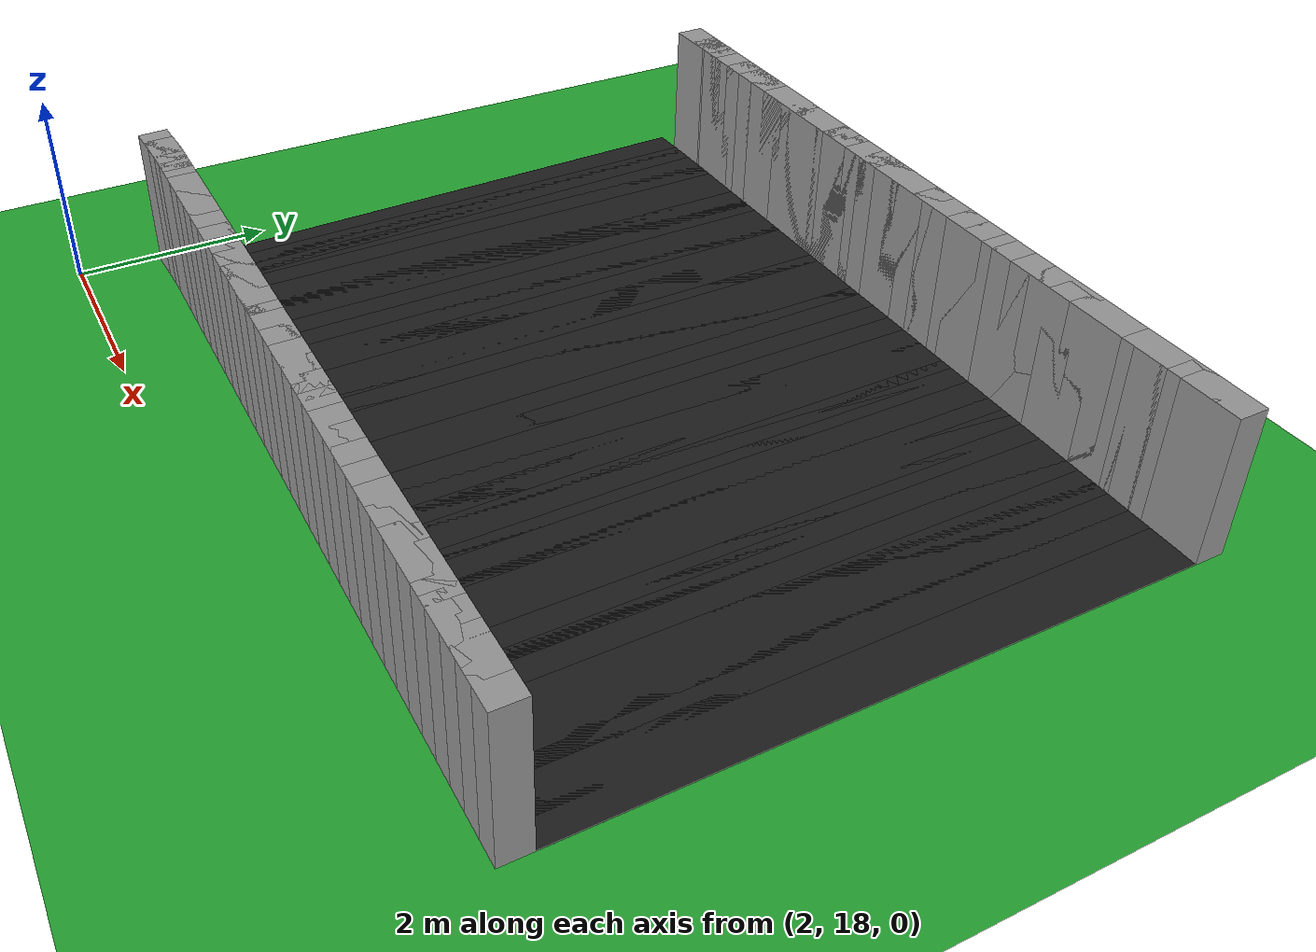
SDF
<sdf version="1.6">
 <world name="obstacle_asymturn">
  <include><uri>model://sun</uri></include>
  <model name="ground_plane">
   <static>true</static>
   <link name="link">
    <collision name="collision">
     <surface><friction><ode><mu>100</mu><mu2>50</mu2></ode></friction></surface>
     <geometry><plane><normal>0 0 1</normal><size>120 120</size></plane></geometry>
    </collision>
    <visual name="visual">
     <geometry><plane><normal>0 0 1</normal><size>120 120</size></plane></geometry>
     <material>
      <script><uri>file://media/materials/scripts/gazebo.material</uri><name>Gazebo/Green</name></script>
     </material>
    </visual>
   </link>
  </model>
  <model name="asphalt_302">
   <static>true</static>
   <pose>10.453 22.163 0.005 0 0 3.14159</pose>
   <link name="link">
    <visual name="visual">
     <geometry><box><size>0.610 6.000 0.010</size></box></geometry>
     <material>
      <script><uri>file://media/materials/scripts/gazebo.material</uri><name>Gazebo/Black</name></script>
     </material>
    </visual>
   </link>
  </model>
  <model name="curbL_302">
   <static>true</static>
   <pose>10.453 19.013 0.750 0 0 3.14159</pose>
   <link name="link">
    <collision name="collision"><geometry><box><size>0.610 0.300 1.500</size></box></geometry></collision>
    <visual name="visual">
     <geometry><box><size>0.610 0.300 1.500</size></box></geometry>
     <material>
      <script><uri>file://media/materials/scripts/gazebo.material</uri><name>Gazebo/Grey</name></script>
     </material>
    </visual>
   </link>
  </model>
  <model name="curbR_302">
   <static>true</static>
   <pose>10.453 25.313 0.750 0 0 3.14159</pose>
   <link name="link">
    <collision name="collision"><geometry><box><size>0.610 0.300 1.500</size></box></geometry></collision>
    <visual name="visual">
     <geometry><box><size>0.610 0.300 1.500</size></box></geometry>
     <material>
      <script><uri>file://media/materials/scripts/gazebo.material</uri><name>Gazebo/Grey</name></script>
     </material>
    </visual>
   </link>
  </model>
  <model name="asphalt_303">
   <static>true</static>
   <pose>10.203 22.163 0.005 0 0 3.14159</pose>
   <link name="link">
    <visual name="visual">
     <geometry><box><size>0.610 6.000 0.010</size></box></geometry>
     <material>
      <script><uri>file://media/materials/scripts/gazebo.material</uri><name>Gazebo/Black</name></script>
     </material>
    </visual>
   </link>
  </model>
  <model name="curbL_303">
   <static>true</static>
   <pose>10.203 19.013 0.750 0 0 3.14159</pose>
   <link name="link">
    <collision name="collision"><geometry><box><size>0.610 0.300 1.500</size></box></geometry></collision>
    <visual name="visual">
     <geometry><box><size>0.610 0.300 1.500</size></box></geometry>
     <material>
      <script><uri>file://media/materials/scripts/gazebo.material</uri><name>Gazebo/Grey</name></script>
     </material>
    </visual>
   </link>
  </model>
  <model name="curbR_303">
   <static>true</static>
   <pose>10.203 25.313 0.750 0 0 3.14159</pose>
   <link name="link">
    <collision name="collision"><geometry><box><size>0.610 0.300 1.500</size></box></geometry></collision>
    <visual name="visual">
     <geometry><box><size>0.610 0.300 1.500</size></box></geometry>
     <material>
      <script><uri>file://media/materials/scripts/gazebo.material</uri><name>Gazebo/Grey</name></script>
     </material>
    </visual>
   </link>
  </model>
  <model name="asphalt_304">
   <static>true</static>
   <pose>9.953 22.163 0.005 0 0 3.14159</pose>
   <link name="link">
    <visual name="visual">
     <geometry><box><size>0.610 6.000 0.010</size></box></geometry>
     <material>
      <script><uri>file://media/materials/scripts/gazebo.material</uri><name>Gazebo/Black</name></script>
     </material>
    </visual>
   </link>
  </model>
  <model name="curbL_304">
   <static>true</static>
   <pose>9.953 19.013 0.750 0 0 3.14159</pose>
   <link name="link">
    <collision name="collision"><geometry><box><size>0.610 0.300 1.500</size></box></geometry></collision>
    <visual name="visual">
     <geometry><box><size>0.610 0.300 1.500</size></box></geometry>
     <material>
      <script><uri>file://media/materials/scripts/gazebo.material</uri><name>Gazebo/Grey</name></script>
     </material>
    </visual>
   </link>
  </model>
  <model name="curbR_304">
   <static>true</static>
   <pose>9.953 25.313 0.750 0 0 3.14159</pose>
   <link name="link">
    <collision name="collision"><geometry><box><size>0.610 0.300 1.500</size></box></geometry></collision>
    <visual name="visual">
     <geometry><box><size>0.610 0.300 1.500</size></box></geometry>
     <material>
      <script><uri>file://media/materials/scripts/gazebo.material</uri><name>Gazebo/Grey</name></script>
     </material>
    </visual>
   </link>
  </model>
  <model name="asphalt_305">
   <static>true</static>
   <pose>9.703 22.163 0.005 0 0 3.14159</pose>
   <link name="link">
    <visual name="visual">
     <geometry><box><size>0.610 6.000 0.010</size></box></geometry>
     <material>
      <script><uri>file://media/materials/scripts/gazebo.material</uri><name>Gazebo/Black</name></script>
     </material>
    </visual>
   </link>
  </model>
  <model name="curbL_305">
   <static>true</static>
   <pose>9.703 19.013 0.750 0 0 3.14159</pose>
   <link name="link">
    <collision name="collision"><geometry><box><size>0.610 0.300 1.500</size></box></geometry></collision>
    <visual name="visual">
     <geometry><box><size>0.610 0.300 1.500</size></box></geometry>
     <material>
      <script><uri>file://media/materials/scripts/gazebo.material</uri><name>Gazebo/Grey</name></script>
     </material>
    </visual>
   </link>
  </model>
  <model name="curbR_305">
   <static>true</static>
   <pose>9.703 25.313 0.750 0 0 3.14159</pose>
   <link name="link">
    <collision name="collision"><geometry><box><size>0.610 0.300 1.500</size></box></geometry></collision>
    <visual name="visual">
     <geometry><box><size>0.610 0.300 1.500</size></box></geometry>
     <material>
      <script><uri>file://media/materials/scripts/gazebo.material</uri><name>Gazebo/Grey</name></script>
     </material>
    </visual>
   </link>
  </model>
  <model name="asphalt_306">
   <static>true</static>
   <pose>9.453 22.163 0.005 0 0 3.14159</pose>
   <link name="link">
    <visual name="visual">
     <geometry><box><size>0.610 6.000 0.010</size></box></geometry>
     <material>
      <script><uri>file://media/materials/scripts/gazebo.material</uri><name>Gazebo/Black</name></script>
     </material>
    </visual>
   </link>
  </model>
  <model name="curbL_306">
   <static>true</static>
   <pose>9.453 19.013 0.750 0 0 3.14159</pose>
   <link name="link">
    <collision name="collision"><geometry><box><size>0.610 0.300 1.500</size></box></geometry></collision>
    <visual name="visual">
     <geometry><box><size>0.610 0.300 1.500</size></box></geometry>
     <material>
      <script><uri>file://media/materials/scripts/gazebo.material</uri><name>Gazebo/Grey</name></script>
     </material>
    </visual>
   </link>
  </model>
  <model name="curbR_306">
   <static>true</static>
   <pose>9.453 25.313 0.750 0 0 3.14159</pose>
   <link name="link">
    <collision name="collision"><geometry><box><size>0.610 0.300 1.500</size></box></geometry></collision>
    <visual name="visual">
     <geometry><box><size>0.610 0.300 1.500</size></box></geometry>
     <material>
      <script><uri>file://media/materials/scripts/gazebo.material</uri><name>Gazebo/Grey</name></script>
     </material>
    </visual>
   </link>
  </model>
  <model name="asphalt_307">
   <static>true</static>
   <pose>9.203 22.163 0.005 0 0 3.14159</pose>
   <link name="link">
    <visual name="visual">
     <geometry><box><size>0.610 6.000 0.010</size></box></geometry>
     <material>
      <script><uri>file://media/materials/scripts/gazebo.material</uri><name>Gazebo/Black</name></script>
     </material>
    </visual>
   </link>
  </model>
  <model name="curbL_307">
   <static>true</static>
   <pose>9.203 19.013 0.750 0 0 3.14159</pose>
   <link name="link">
    <collision name="collision"><geometry><box><size>0.610 0.300 1.500</size></box></geometry></collision>
    <visual name="visual">
     <geometry><box><size>0.610 0.300 1.500</size></box></geometry>
     <material>
      <script><uri>file://media/materials/scripts/gazebo.material</uri><name>Gazebo/Grey</name></script>
     </material>
    </visual>
   </link>
  </model>
  <model name="curbR_307">
   <static>true</static>
   <pose>9.203 25.313 0.750 0 0 3.14159</pose>
   <link name="link">
    <collision name="collision"><geometry><box><size>0.610 0.300 1.500</size></box></geometry></collision>
    <visual name="visual">
     <geometry><box><size>0.610 0.300 1.500</size></box></geometry>
     <material>
      <script><uri>file://media/materials/scripts/gazebo.material</uri><name>Gazebo/Grey</name></script>
     </material>
    </visual>
   </link>
  </model>
  <model name="asphalt_308">
   <static>true</static>
   <pose>8.953 22.163 0.005 0 0 3.14159</pose>
   <link name="link">
    <visual name="visual">
     <geometry><box><size>0.610 6.000 0.010</size></box></geometry>
     <material>
      <script><uri>file://media/materials/scripts/gazebo.material</uri><name>Gazebo/Black</name></script>
     </material>
    </visual>
   </link>
  </model>
  <model name="curbL_308">
   <static>true</static>
   <pose>8.953 19.013 0.750 0 0 3.14159</pose>
   <link name="link">
    <collision name="collision"><geometry><box><size>0.610 0.300 1.500</size></box></geometry></collision>
    <visual name="visual">
     <geometry><box><size>0.610 0.300 1.500</size></box></geometry>
     <material>
      <script><uri>file://media/materials/scripts/gazebo.material</uri><name>Gazebo/Grey</name></script>
     </material>
    </visual>
   </link>
  </model>
  <model name="curbR_308">
   <static>true</static>
   <pose>8.953 25.313 0.750 0 0 3.14159</pose>
   <link name="link">
    <collision name="collision"><geometry><box><size>0.610 0.300 1.500</size></box></geometry></collision>
    <visual name="visual">
     <geometry><box><size>0.610 0.300 1.500</size></box></geometry>
     <material>
      <script><uri>file://media/materials/scripts/gazebo.material</uri><name>Gazebo/Grey</name></script>
     </material>
    </visual>
   </link>
  </model>
  <model name="asphalt_309">
   <static>true</static>
   <pose>8.703 22.163 0.005 0 0 3.14159</pose>
   <link name="link">
    <visual name="visual">
     <geometry><box><size>0.610 6.000 0.010</size></box></geometry>
     <material>
      <script><uri>file://media/materials/scripts/gazebo.material</uri><name>Gazebo/Black</name></script>
     </material>
    </visual>
   </link>
  </model>
  <model name="curbL_309">
   <static>true</static>
   <pose>8.703 19.013 0.750 0 0 3.14159</pose>
   <link name="link">
    <collision name="collision"><geometry><box><size>0.610 0.300 1.500</size></box></geometry></collision>
    <visual name="visual">
     <geometry><box><size>0.610 0.300 1.500</size></box></geometry>
     <material>
      <script><uri>file://media/materials/scripts/gazebo.material</uri><name>Gazebo/Grey</name></script>
     </material>
    </visual>
   </link>
  </model>
  <model name="curbR_309">
   <static>true</static>
   <pose>8.703 25.313 0.750 0 0 3.14159</pose>
   <link name="link">
    <collision name="collision"><geometry><box><size>0.610 0.300 1.500</size></box></geometry></collision>
    <visual name="visual">
     <geometry><box><size>0.610 0.300 1.500</size></box></geometry>
     <material>
      <script><uri>file://media/materials/scripts/gazebo.material</uri><name>Gazebo/Grey</name></script>
     </material>
    </visual>
   </link>
  </model>
  <model name="asphalt_310">
   <static>true</static>
   <pose>8.453 22.163 0.005 0 0 3.14159</pose>
   <link name="link">
    <visual name="visual">
     <geometry><box><size>0.610 6.000 0.010</size></box></geometry>
     <material>
      <script><uri>file://media/materials/scripts/gazebo.material</uri><name>Gazebo/Black</name></script>
     </material>
    </visual>
   </link>
  </model>
  <model name="curbL_310">
   <static>true</static>
   <pose>8.453 19.013 0.750 0 0 3.14159</pose>
   <link name="link">
    <collision name="collision"><geometry><box><size>0.610 0.300 1.500</size></box></geometry></collision>
    <visual name="visual">
     <geometry><box><size>0.610 0.300 1.500</size></box></geometry>
     <material>
      <script><uri>file://media/materials/scripts/gazebo.material</uri><name>Gazebo/Grey</name></script>
     </material>
    </visual>
   </link>
  </model>
  <model name="curbR_310">
   <static>true</static>
   <pose>8.453 25.313 0.750 0 0 3.14159</pose>
   <link name="link">
    <collision name="collision"><geometry><box><size>0.610 0.300 1.500</size></box></geometry></collision>
    <visual name="visual">
     <geometry><box><size>0.610 0.300 1.500</size></box></geometry>
     <material>
      <script><uri>file://media/materials/scripts/gazebo.material</uri><name>Gazebo/Grey</name></script>
     </material>
    </visual>
   </link>
  </model>
  <model name="asphalt_311">
   <static>true</static>
   <pose>8.203 22.163 0.005 0 0 3.14159</pose>
   <link name="link">
    <visual name="visual">
     <geometry><box><size>0.610 6.000 0.010</size></box></geometry>
     <material>
      <script><uri>file://media/materials/scripts/gazebo.material</uri><name>Gazebo/Black</name></script>
     </material>
    </visual>
   </link>
  </model>
  <model name="curbL_311">
   <static>true</static>
   <pose>8.203 19.013 0.750 0 0 3.14159</pose>
   <link name="link">
    <collision name="collision"><geometry><box><size>0.610 0.300 1.500</size></box></geometry></collision>
    <visual name="visual">
     <geometry><box><size>0.610 0.300 1.500</size></box></geometry>
     <material>
      <script><uri>file://media/materials/scripts/gazebo.material</uri><name>Gazebo/Grey</name></script>
     </material>
    </visual>
   </link>
  </model>
  <model name="curbR_311">
   <static>true</static>
   <pose>8.203 25.313 0.750 0 0 3.14159</pose>
   <link name="link">
    <collision name="collision"><geometry><box><size>0.610 0.300 1.500</size></box></geometry></collision>
    <visual name="visual">
     <geometry><box><size>0.610 0.300 1.500</size></box></geometry>
     <material>
      <script><uri>file://media/materials/scripts/gazebo.material</uri><name>Gazebo/Grey</name></script>
     </material>
    </visual>
   </link>
  </model>
  <model name="asphalt_312">
   <static>true</static>
   <pose>7.953 22.163 0.005 0 0 3.14159</pose>
   <link name="link">
    <visual name="visual">
     <geometry><box><size>0.610 6.000 0.010</size></box></geometry>
     <material>
      <script><uri>file://media/materials/scripts/gazebo.material</uri><name>Gazebo/Black</name></script>
     </material>
    </visual>
   </link>
  </model>
  <model name="curbL_312">
   <static>true</static>
   <pose>7.953 19.013 0.750 0 0 3.14159</pose>
   <link name="link">
    <collision name="collision"><geometry><box><size>0.610 0.300 1.500</size></box></geometry></collision>
    <visual name="visual">
     <geometry><box><size>0.610 0.300 1.500</size></box></geometry>
     <material>
      <script><uri>file://media/materials/scripts/gazebo.material</uri><name>Gazebo/Grey</name></script>
     </material>
    </visual>
   </link>
  </model>
  <model name="curbR_312">
   <static>true</static>
   <pose>7.953 25.313 0.750 0 0 3.14159</pose>
   <link name="link">
    <collision name="collision"><geometry><box><size>0.610 0.300 1.500</size></box></geometry></collision>
    <visual name="visual">
     <geometry><box><size>0.610 0.300 1.500</size></box></geometry>
     <material>
      <script><uri>file://media/materials/scripts/gazebo.material</uri><name>Gazebo/Grey</name></script>
     </material>
    </visual>
   </link>
  </model>
  <model name="asphalt_313">
   <static>true</static>
   <pose>7.703 22.163 0.005 0 0 3.14159</pose>
   <link name="link">
    <visual name="visual">
     <geometry><box><size>0.610 6.000 0.010</size></box></geometry>
     <material>
      <script><uri>file://media/materials/scripts/gazebo.material</uri><name>Gazebo/Black</name></script>
     </material>
    </visual>
   </link>
  </model>
  <model name="curbL_313">
   <static>true</static>
   <pose>7.703 19.013 0.750 0 0 3.14159</pose>
   <link name="link">
    <collision name="collision"><geometry><box><size>0.610 0.300 1.500</size></box></geometry></collision>
    <visual name="visual">
     <geometry><box><size>0.610 0.300 1.500</size></box></geometry>
     <material>
      <script><uri>file://media/materials/scripts/gazebo.material</uri><name>Gazebo/Grey</name></script>
     </material>
    </visual>
   </link>
  </model>
  <model name="curbR_313">
   <static>true</static>
   <pose>7.703 25.313 0.750 0 0 3.14159</pose>
   <link name="link">
    <collision name="collision"><geometry><box><size>0.610 0.300 1.500</size></box></geometry></collision>
    <visual name="visual">
     <geometry><box><size>0.610 0.300 1.500</size></box></geometry>
     <material>
      <script><uri>file://media/materials/scripts/gazebo.material</uri><name>Gazebo/Grey</name></script>
     </material>
    </visual>
   </link>
  </model>
  <model name="asphalt_314">
   <static>true</static>
   <pose>7.453 22.163 0.005 0 0 3.14159</pose>
   <link name="link">
    <visual name="visual">
     <geometry><box><size>0.610 6.000 0.010</size></box></geometry>
     <material>
      <script><uri>file://media/materials/scripts/gazebo.material</uri><name>Gazebo/Black</name></script>
     </material>
    </visual>
   </link>
  </model>
  <model name="curbL_314">
   <static>true</static>
   <pose>7.453 19.013 0.750 0 0 3.14159</pose>
   <link name="link">
    <collision name="collision"><geometry><box><size>0.610 0.300 1.500</size></box></geometry></collision>
    <visual name="visual">
     <geometry><box><size>0.610 0.300 1.500</size></box></geometry>
     <material>
      <script><uri>file://media/materials/scripts/gazebo.material</uri><name>Gazebo/Grey</name></script>
     </material>
    </visual>
   </link>
  </model>
  <model name="curbR_314">
   <static>true</static>
   <pose>7.453 25.313 0.750 0 0 3.14159</pose>
   <link name="link">
    <collision name="collision"><geometry><box><size>0.610 0.300 1.500</size></box></geometry></collision>
    <visual name="visual">
     <geometry><box><size>0.610 0.300 1.500</size></box></geometry>
     <material>
      <script><uri>file://media/materials/scripts/gazebo.material</uri><name>Gazebo/Grey</name></script>
     </material>
    </visual>
   </link>
  </model>
  <model name="asphalt_315">
   <static>true</static>
   <pose>7.203 22.163 0.005 0 0 3.14159</pose>
   <link name="link">
    <visual name="visual">
     <geometry><box><size>0.610 6.000 0.010</size></box></geometry>
     <material>
      <script><uri>file://media/materials/scripts/gazebo.material</uri><name>Gazebo/Black</name></script>
     </material>
    </visual>
   </link>
  </model>
  <model name="curbL_315">
   <static>true</static>
   <pose>7.203 19.013 0.750 0 0 3.14159</pose>
   <link name="link">
    <collision name="collision"><geometry><box><size>0.610 0.300 1.500</size></box></geometry></collision>
    <visual name="visual">
     <geometry><box><size>0.610 0.300 1.500</size></box></geometry>
     <material>
      <script><uri>file://media/materials/scripts/gazebo.material</uri><name>Gazebo/Grey</name></script>
     </material>
    </visual>
   </link>
  </model>
  <model name="curbR_315">
   <static>true</static>
   <pose>7.203 25.313 0.750 0 0 3.14159</pose>
   <link name="link">
    <collision name="collision"><geometry><box><size>0.610 0.300 1.500</size></box></geometry></collision>
    <visual name="visual">
     <geometry><box><size>0.610 0.300 1.500</size></box></geometry>
     <material>
      <script><uri>file://media/materials/scripts/gazebo.material</uri><name>Gazebo/Grey</name></script>
     </material>
    </visual>
   </link>
  </model>
  <model name="asphalt_316">
   <static>true</static>
   <pose>6.953 22.163 0.005 0 0 3.14159</pose>
   <link name="link">
    <visual name="visual">
     <geometry><box><size>0.610 6.000 0.010</size></box></geometry>
     <material>
      <script><uri>file://media/materials/scripts/gazebo.material</uri><name>Gazebo/Black</name></script>
     </material>
    </visual>
   </link>
  </model>
  <model name="curbL_316">
   <static>true</static>
   <pose>6.953 19.013 0.750 0 0 3.14159</pose>
   <link name="link">
    <collision name="collision"><geometry><box><size>0.610 0.300 1.500</size></box></geometry></collision>
    <visual name="visual">
     <geometry><box><size>0.610 0.300 1.500</size></box></geometry>
     <material>
      <script><uri>file://media/materials/scripts/gazebo.material</uri><name>Gazebo/Grey</name></script>
     </material>
    </visual>
   </link>
  </model>
  <model name="curbR_316">
   <static>true</static>
   <pose>6.953 25.313 0.750 0 0 3.14159</pose>
   <link name="link">
    <collision name="collision"><geometry><box><size>0.610 0.300 1.500</size></box></geometry></collision>
    <visual name="visual">
     <geometry><box><size>0.610 0.300 1.500</size></box></geometry>
     <material>
      <script><uri>file://media/materials/scripts/gazebo.material</uri><name>Gazebo/Grey</name></script>
     </material>
    </visual>
   </link>
  </model>
  <model name="asphalt_317">
   <static>true</static>
   <pose>6.703 22.163 0.005 0 0 3.14159</pose>
   <link name="link">
    <visual name="visual">
     <geometry><box><size>0.610 6.000 0.010</size></box></geometry>
     <material>
      <script><uri>file://media/materials/scripts/gazebo.material</uri><name>Gazebo/Black</name></script>
     </material>
    </visual>
   </link>
  </model>
  <model name="curbL_317">
   <static>true</static>
   <pose>6.703 19.013 0.750 0 0 3.14159</pose>
   <link name="link">
    <collision name="collision"><geometry><box><size>0.610 0.300 1.500</size></box></geometry></collision>
    <visual name="visual">
     <geometry><box><size>0.610 0.300 1.500</size></box></geometry>
     <material>
      <script><uri>file://media/materials/scripts/gazebo.material</uri><name>Gazebo/Grey</name></script>
     </material>
    </visual>
   </link>
  </model>
  <model name="curbR_317">
   <static>true</static>
   <pose>6.703 25.313 0.750 0 0 3.14159</pose>
   <link name="link">
    <collision name="collision"><geometry><box><size>0.610 0.300 1.500</size></box></geometry></collision>
    <visual name="visual">
     <geometry><box><size>0.610 0.300 1.500</size></box></geometry>
     <material>
      <script><uri>file://media/materials/scripts/gazebo.material</uri><name>Gazebo/Grey</name></script>
     </material>
    </visual>
   </link>
  </model>
  <model name="asphalt_318">
   <static>true</static>
   <pose>6.453 22.163 0.005 0 0 3.14159</pose>
   <link name="link">
    <visual name="visual">
     <geometry><box><size>0.610 6.000 0.010</size></box></geometry>
     <material>
      <script><uri>file://media/materials/scripts/gazebo.material</uri><name>Gazebo/Black</name></script>
     </material>
    </visual>
   </link>
  </model>
  <model name="curbL_318">
   <static>true</static>
   <pose>6.453 19.013 0.750 0 0 3.14159</pose>
   <link name="link">
    <collision name="collision"><geometry><box><size>0.610 0.300 1.500</size></box></geometry></collision>
    <visual name="visual">
     <geometry><box><size>0.610 0.300 1.500</size></box></geometry>
     <material>
      <script><uri>file://media/materials/scripts/gazebo.material</uri><name>Gazebo/Grey</name></script>
     </material>
    </visual>
   </link>
  </model>
  <model name="curbR_318">
   <static>true</static>
   <pose>6.453 25.313 0.750 0 0 3.14159</pose>
   <link name="link">
    <collision name="collision"><geometry><box><size>0.610 0.300 1.500</size></box></geometry></collision>
    <visual name="visual">
     <geometry><box><size>0.610 0.300 1.500</size></box></geometry>
     <material>
      <script><uri>file://media/materials/scripts/gazebo.material</uri><name>Gazebo/Grey</name></script>
     </material>
    </visual>
   </link>
  </model>
  <model name="asphalt_319">
   <static>true</static>
   <pose>6.203 22.163 0.005 0 0 3.14159</pose>
   <link name="link">
    <visual name="visual">
     <geometry><box><size>0.610 6.000 0.010</size></box></geometry>
     <material>
      <script><uri>file://media/materials/scripts/gazebo.material</uri><name>Gazebo/Black</name></script>
     </material>
    </visual>
   </link>
  </model>
  <model name="curbL_319">
   <static>true</static>
   <pose>6.203 19.013 0.750 0 0 3.14159</pose>
   <link name="link">
    <collision name="collision"><geometry><box><size>0.610 0.300 1.500</size></box></geometry></collision>
    <visual name="visual">
     <geometry><box><size>0.610 0.300 1.500</size></box></geometry>
     <material>
      <script><uri>file://media/materials/scripts/gazebo.material</uri><name>Gazebo/Grey</name></script>
     </material>
    </visual>
   </link>
  </model>
  <model name="curbR_319">
   <static>true</static>
   <pose>6.203 25.313 0.750 0 0 3.14159</pose>
   <link name="link">
    <collision name="collision"><geometry><box><size>0.610 0.300 1.500</size></box></geometry></collision>
    <visual name="visual">
     <geometry><box><size>0.610 0.300 1.500</size></box></geometry>
     <material>
      <script><uri>file://media/materials/scripts/gazebo.material</uri><name>Gazebo/Grey</name></script>
     </material>
    </visual>
   </link>
  </model>
  <model name="asphalt_320">
   <static>true</static>
   <pose>5.953 22.163 0.005 0 0 3.14159</pose>
   <link name="link">
    <visual name="visual">
     <geometry><box><size>0.610 6.000 0.010</size></box></geometry>
     <material>
      <script><uri>file://media/materials/scripts/gazebo.material</uri><name>Gazebo/Black</name></script>
     </material>
    </visual>
   </link>
  </model>
  <model name="curbL_320">
   <static>true</static>
   <pose>5.953 19.013 0.750 0 0 3.14159</pose>
   <link name="link">
    <collision name="collision"><geometry><box><size>0.610 0.300 1.500</size></box></geometry></collision>
    <visual name="visual">
     <geometry><box><size>0.610 0.300 1.500</size></box></geometry>
     <material>
      <script><uri>file://media/materials/scripts/gazebo.material</uri><name>Gazebo/Grey</name></script>
     </material>
    </visual>
   </link>
  </model>
  <model name="curbR_320">
   <static>true</static>
   <pose>5.953 25.313 0.750 0 0 3.14159</pose>
   <link name="link">
    <collision name="collision"><geometry><box><size>0.610 0.300 1.500</size></box></geometry></collision>
    <visual name="visual">
     <geometry><box><size>0.610 0.300 1.500</size></box></geometry>
     <material>
      <script><uri>file://media/materials/scripts/gazebo.material</uri><name>Gazebo/Grey</name></script>
     </material>
    </visual>
   </link>
  </model>
  <model name="asphalt_321">
   <static>true</static>
   <pose>5.703 22.163 0.005 0 0 3.14159</pose>
   <link name="link">
    <visual name="visual">
     <geometry><box><size>0.610 6.000 0.010</size></box></geometry>
     <material>
      <script><uri>file://media/materials/scripts/gazebo.material</uri><name>Gazebo/Black</name></script>
     </material>
    </visual>
   </link>
  </model>
  <model name="curbL_321">
   <static>true</static>
   <pose>5.703 19.013 0.750 0 0 3.14159</pose>
   <link name="link">
    <collision name="collision"><geometry><box><size>0.610 0.300 1.500</size></box></geometry></collision>
    <visual name="visual">
     <geometry><box><size>0.610 0.300 1.500</size></box></geometry>
     <material>
      <script><uri>file://media/materials/scripts/gazebo.material</uri><name>Gazebo/Grey</name></script>
     </material>
    </visual>
   </link>
  </model>
  <model name="curbR_321">
   <static>true</static>
   <pose>5.703 25.313 0.750 0 0 3.14159</pose>
   <link name="link">
    <collision name="collision"><geometry><box><size>0.610 0.300 1.500</size></box></geometry></collision>
    <visual name="visual">
     <geometry><box><size>0.610 0.300 1.500</size></box></geometry>
     <material>
      <script><uri>file://media/materials/scripts/gazebo.material</uri><name>Gazebo/Grey</name></script>
     </material>
    </visual>
   </link>
  </model>
  <model name="asphalt_322">
   <static>true</static>
   <pose>5.453 22.163 0.005 0 0 3.14159</pose>
   <link name="link">
    <visual name="visual">
     <geometry><box><size>0.610 6.000 0.010</size></box></geometry>
     <material>
      <script><uri>file://media/materials/scripts/gazebo.material</uri><name>Gazebo/Black</name></script>
     </material>
    </visual>
   </link>
  </model>
  <model name="curbL_322">
   <static>true</static>
   <pose>5.453 19.013 0.750 0 0 3.14159</pose>
   <link name="link">
    <collision name="collision"><geometry><box><size>0.610 0.300 1.500</size></box></geometry></collision>
    <visual name="visual">
     <geometry><box><size>0.610 0.300 1.500</size></box></geometry>
     <material>
      <script><uri>file://media/materials/scripts/gazebo.material</uri><name>Gazebo/Grey</name></script>
     </material>
    </visual>
   </link>
  </model>
  <model name="curbR_322">
   <static>true</static>
   <pose>5.453 25.313 0.750 0 0 3.14159</pose>
   <link name="link">
    <collision name="collision"><geometry><box><size>0.610 0.300 1.500</size></box></geometry></collision>
    <visual name="visual">
     <geometry><box><size>0.610 0.300 1.500</size></box></geometry>
     <material>
      <script><uri>file://media/materials/scripts/gazebo.material</uri><name>Gazebo/Grey</name></script>
     </material>
    </visual>
   </link>
  </model>
  <model name="asphalt_323">
   <static>true</static>
   <pose>5.203 22.163 0.005 0 0 3.14159</pose>
   <link name="link">
    <visual name="visual">
     <geometry><box><size>0.610 6.000 0.010</size></box></geometry>
     <material>
      <script><uri>file://media/materials/scripts/gazebo.material</uri><name>Gazebo/Black</name></script>
     </material>
    </visual>
   </link>
  </model>
  <model name="curbL_323">
   <static>true</static>
   <pose>5.203 19.013 0.750 0 0 3.14159</pose>
   <link name="link">
    <collision name="collision"><geometry><box><size>0.610 0.300 1.500</size></box></geometry></collision>
    <visual name="visual">
     <geometry><box><size>0.610 0.300 1.500</size></box></geometry>
     <material>
      <script><uri>file://media/materials/scripts/gazebo.material</uri><name>Gazebo/Grey</name></script>
     </material>
    </visual>
   </link>
  </model>
  <model name="curbR_323">
   <static>true</static>
   <pose>5.203 25.313 0.750 0 0 3.14159</pose>
   <link name="link">
    <collision name="collision"><geometry><box><size>0.610 0.300 1.500</size></box></geometry></collision>
    <visual name="visual">
     <geometry><box><size>0.610 0.300 1.500</size></box></geometry>
     <material>
      <script><uri>file://media/materials/scripts/gazebo.material</uri><name>Gazebo/Grey</name></script>
     </material>
    </visual>
   </link>
  </model>
  <model name="asphalt_324">
   <static>true</static>
   <pose>4.953 22.163 0.005 0 0 3.14159</pose>
   <link name="link">
    <visual name="visual">
     <geometry><box><size>0.610 6.000 0.010</size></box></geometry>
     <material>
      <script><uri>file://media/materials/scripts/gazebo.material</uri><name>Gazebo/Black</name></script>
     </material>
    </visual>
   </link>
  </model>
  <model name="curbL_324">
   <static>true</static>
   <pose>4.953 19.013 0.750 0 0 3.14159</pose>
   <link name="link">
    <collision name="collision"><geometry><box><size>0.610 0.300 1.500</size></box></geometry></collision>
    <visual name="visual">
     <geometry><box><size>0.610 0.300 1.500</size></box></geometry>
     <material>
      <script><uri>file://media/materials/scripts/gazebo.material</uri><name>Gazebo/Grey</name></script>
     </material>
    </visual>
   </link>
  </model>
  <model name="curbR_324">
   <static>true</static>
   <pose>4.953 25.313 0.750 0 0 3.14159</pose>
   <link name="link">
    <collision name="collision"><geometry><box><size>0.610 0.300 1.500</size></box></geometry></collision>
    <visual name="visual">
     <geometry><box><size>0.610 0.300 1.500</size></box></geometry>
     <material>
      <script><uri>file://media/materials/scripts/gazebo.material</uri><name>Gazebo/Grey</name></script>
     </material>
    </visual>
   </link>
  </model>
  <model name="asphalt_325">
   <static>true</static>
   <pose>4.703 22.163 0.005 0 0 3.14159</pose>
   <link name="link">
    <visual name="visual">
     <geometry><box><size>0.610 6.000 0.010</size></box></geometry>
     <material>
      <script><uri>file://media/materials/scripts/gazebo.material</uri><name>Gazebo/Black</name></script>
     </material>
    </visual>
   </link>
  </model>
  <model name="curbL_325">
   <static>true</static>
   <pose>4.703 19.013 0.750 0 0 3.14159</pose>
   <link name="link">
    <collision name="collision"><geometry><box><size>0.610 0.300 1.500</size></box></geometry></collision>
    <visual name="visual">
     <geometry><box><size>0.610 0.300 1.500</size></box></geometry>
     <material>
      <script><uri>file://media/materials/scripts/gazebo.material</uri><name>Gazebo/Grey</name></script>
     </material>
    </visual>
   </link>
  </model>
  <model name="curbR_325">
   <static>true</static>
   <pose>4.703 25.313 0.750 0 0 3.14159</pose>
   <link name="link">
    <collision name="collision"><geometry><box><size>0.610 0.300 1.500</size></box></geometry></collision>
    <visual name="visual">
     <geometry><box><size>0.610 0.300 1.500</size></box></geometry>
     <material>
      <script><uri>file://media/materials/scripts/gazebo.material</uri><name>Gazebo/Grey</name></script>
     </material>
    </visual>
   </link>
  </model>
  <model name="asphalt_326">
   <static>true</static>
   <pose>4.453 22.163 0.005 0 0 3.14159</pose>
   <link name="link">
    <visual name="visual">
     <geometry><box><size>0.610 6.000 0.010</size></box></geometry>
     <material>
      <script><uri>file://media/materials/scripts/gazebo.material</uri><name>Gazebo/Black</name></script>
     </material>
    </visual>
   </link>
  </model>
  <model name="curbL_326">
   <static>true</static>
   <pose>4.453 19.013 0.750 0 0 3.14159</pose>
   <link name="link">
    <collision name="collision"><geometry><box><size>0.610 0.300 1.500</size></box></geometry></collision>
    <visual name="visual">
     <geometry><box><size>0.610 0.300 1.500</size></box></geometry>
     <material>
      <script><uri>file://media/materials/scripts/gazebo.material</uri><name>Gazebo/Grey</name></script>
     </material>
    </visual>
   </link>
  </model>
  <model name="curbR_326">
   <static>true</static>
   <pose>4.453 25.313 0.750 0 0 3.14159</pose>
   <link name="link">
    <collision name="collision"><geometry><box><size>0.610 0.300 1.500</size></box></geometry></collision>
    <visual name="visual">
     <geometry><box><size>0.610 0.300 1.500</size></box></geometry>
     <material>
      <script><uri>file://media/materials/scripts/gazebo.material</uri><name>Gazebo/Grey</name></script>
     </material>
    </visual>
   </link>
  </model>
  <model name="asphalt_327">
   <static>true</static>
   <pose>4.203 22.163 0.005 0 0 3.14159</pose>
   <link name="link">
    <visual name="visual">
     <geometry><box><size>0.610 6.000 0.010</size></box></geometry>
     <material>
      <script><uri>file://media/materials/scripts/gazebo.material</uri><name>Gazebo/Black</name></script>
     </material>
    </visual>
   </link>
  </model>
  <model name="curbL_327">
   <static>true</static>
   <pose>4.203 19.013 0.750 0 0 3.14159</pose>
   <link name="link">
    <collision name="collision"><geometry><box><size>0.610 0.300 1.500</size></box></geometry></collision>
    <visual name="visual">
     <geometry><box><size>0.610 0.300 1.500</size></box></geometry>
     <material>
      <script><uri>file://media/materials/scripts/gazebo.material</uri><name>Gazebo/Grey</name></script>
     </material>
    </visual>
   </link>
  </model>
  <model name="curbR_327">
   <static>true</static>
   <pose>4.203 25.313 0.750 0 0 3.14159</pose>
   <link name="link">
    <collision name="collision"><geometry><box><size>0.610 0.300 1.500</size></box></geometry></collision>
    <visual name="visual">
     <geometry><box><size>0.610 0.300 1.500</size></box></geometry>
     <material>
      <script><uri>file://media/materials/scripts/gazebo.material</uri><name>Gazebo/Grey</name></script>
     </material>
    </visual>
   </link>
  </model>
  <model name="asphalt_328">
   <static>true</static>
   <pose>3.953 22.163 0.005 0 0 3.14159</pose>
   <link name="link">
    <visual name="visual">
     <geometry><box><size>0.610 6.000 0.010</size></box></geometry>
     <material>
      <script><uri>file://media/materials/scripts/gazebo.material</uri><name>Gazebo/Black</name></script>
     </material>
    </visual>
   </link>
  </model>
  <model name="curbL_328">
   <static>true</static>
   <pose>3.953 19.013 0.750 0 0 3.14159</pose>
   <link name="link">
    <collision name="collision"><geometry><box><size>0.610 0.300 1.500</size></box></geometry></collision>
    <visual name="visual">
     <geometry><box><size>0.610 0.300 1.500</size></box></geometry>
     <material>
      <script><uri>file://media/materials/scripts/gazebo.material</uri><name>Gazebo/Grey</name></script>
     </material>
    </visual>
   </link>
  </model>
  <model name="curbR_328">
   <static>true</static>
   <pose>3.953 25.313 0.750 0 0 3.14159</pose>
   <link name="link">
    <collision name="collision"><geometry><box><size>0.610 0.300 1.500</size></box></geometry></collision>
    <visual name="visual">
     <geometry><box><size>0.610 0.300 1.500</size></box></geometry>
     <material>
      <script><uri>file://media/materials/scripts/gazebo.material</uri><name>Gazebo/Grey</name></script>
     </material>
    </visual>
   </link>
  </model>
  <model name="asphalt_329">
   <static>true</static>
   <pose>3.703 22.163 0.005 0 0 3.14159</pose>
   <link name="link">
    <visual name="visual">
     <geometry><box><size>0.610 6.000 0.010</size></box></geometry>
     <material>
      <script><uri>file://media/materials/scripts/gazebo.material</uri><name>Gazebo/Black</name></script>
     </material>
    </visual>
   </link>
  </model>
  <model name="curbL_329">
   <static>true</static>
   <pose>3.703 19.013 0.750 0 0 3.14159</pose>
   <link name="link">
    <collision name="collision"><geometry><box><size>0.610 0.300 1.500</size></box></geometry></collision>
    <visual name="visual">
     <geometry><box><size>0.610 0.300 1.500</size></box></geometry>
     <material>
      <script><uri>file://media/materials/scripts/gazebo.material</uri><name>Gazebo/Grey</name></script>
     </material>
    </visual>
   </link>
  </model>
  <model name="curbR_329">
   <static>true</static>
   <pose>3.703 25.313 0.750 0 0 3.14159</pose>
   <link name="link">
    <collision name="collision"><geometry><box><size>0.610 0.300 1.500</size></box></geometry></collision>
    <visual name="visual">
     <geometry><box><size>0.610 0.300 1.500</size></box></geometry>
     <material>
      <script><uri>file://media/materials/scripts/gazebo.material</uri><name>Gazebo/Grey</name></script>
     </material>
    </visual>
   </link>
  </model>
  <model name="asphalt_330">
   <static>true</static>
   <pose>3.453 22.163 0.005 0 0 3.14159</pose>
   <link name="link">
    <visual name="visual">
     <geometry><box><size>0.610 6.000 0.010</size></box></geometry>
     <material>
      <script><uri>file://media/materials/scripts/gazebo.material</uri><name>Gazebo/Black</name></script>
     </material>
    </visual>
   </link>
  </model>
  <model name="curbL_330">
   <static>true</static>
   <pose>3.453 19.013 0.750 0 0 3.14159</pose>
   <link name="link">
    <collision name="collision"><geometry><box><size>0.610 0.300 1.500</size></box></geometry></collision>
    <visual name="visual">
     <geometry><box><size>0.610 0.300 1.500</size></box></geometry>
     <material>
      <script><uri>file://media/materials/scripts/gazebo.material</uri><name>Gazebo/Grey</name></script>
     </material>
    </visual>
   </link>
  </model>
  <model name="curbR_330">
   <static>true</static>
   <pose>3.453 25.313 0.750 0 0 3.14159</pose>
   <link name="link">
    <collision name="collision"><geometry><box><size>0.610 0.300 1.500</size></box></geometry></collision>
    <visual name="visual">
     <geometry><box><size>0.610 0.300 1.500</size></box></geometry>
     <material>
      <script><uri>file://media/materials/scripts/gazebo.material</uri><name>Gazebo/Grey</name></script>
     </material>
    </visual>
   </link>
  </model>
  <model name="asphalt_331">
   <static>true</static>
   <pose>3.203 22.163 0.005 0 0 3.14159</pose>
   <link name="link">
    <visual name="visual">
     <geometry><box><size>0.610 6.000 0.010</size></box></geometry>
     <material>
      <script><uri>file://media/materials/scripts/gazebo.material</uri><name>Gazebo/Black</name></script>
     </material>
    </visual>
   </link>
  </model>
  <model name="curbL_331">
   <static>true</static>
   <pose>3.203 19.013 0.750 0 0 3.14159</pose>
   <link name="link">
    <collision name="collision"><geometry><box><size>0.610 0.300 1.500</size></box></geometry></collision>
    <visual name="visual">
     <geometry><box><size>0.610 0.300 1.500</size></box></geometry>
     <material>
      <script><uri>file://media/materials/scripts/gazebo.material</uri><name>Gazebo/Grey</name></script>
     </material>
    </visual>
   </link>
  </model>
  <model name="curbR_331">
   <static>true</static>
   <pose>3.203 25.313 0.750 0 0 3.14159</pose>
   <link name="link">
    <collision name="collision"><geometry><box><size>0.610 0.300 1.500</size></box></geometry></collision>
    <visual name="visual">
     <geometry><box><size>0.610 0.300 1.500</size></box></geometry>
     <material>
      <script><uri>file://media/materials/scripts/gazebo.material</uri><name>Gazebo/Grey</name></script>
     </material>
    </visual>
   </link>
  </model>
  <model name="asphalt_332">
   <static>true</static>
   <pose>2.953 22.163 0.005 0 0 3.14159</pose>
   <link name="link">
    <visual name="visual">
     <geometry><box><size>0.610 6.000 0.010</size></box></geometry>
     <material>
      <script><uri>file://media/materials/scripts/gazebo.material</uri><name>Gazebo/Black</name></script>
     </material>
    </visual>
   </link>
  </model>
  <model name="curbL_332">
   <static>true</static>
   <pose>2.953 19.013 0.750 0 0 3.14159</pose>
   <link name="link">
    <collision name="collision"><geometry><box><size>0.610 0.300 1.500</size></box></geometry></collision>
    <visual name="visual">
     <geometry><box><size>0.610 0.300 1.500</size></box></geometry>
     <material>
      <script><uri>file://media/materials/scripts/gazebo.material</uri><name>Gazebo/Grey</name></script>
     </material>
    </visual>
   </link>
  </model>
  <model name="curbR_332">
   <static>true</static>
   <pose>2.953 25.313 0.750 0 0 3.14159</pose>
   <link name="link">
    <collision name="collision"><geometry><box><size>0.610 0.300 1.500</size></box></geometry></collision>
    <visual name="visual">
     <geometry><box><size>0.610 0.300 1.500</size></box></geometry>
     <material>
      <script><uri>file://media/materials/scripts/gazebo.material</uri><name>Gazebo/Grey</name></script>
     </material>
    </visual>
   </link>
  </model>
  <model name="asphalt_333">
   <static>true</static>
   <pose>2.704 22.162 0.005 0 0 -3.13126</pose>
   <link name="link">
    <visual name="visual">
     <geometry><box><size>0.608 6.000 0.010</size></box></geometry>
     <material>
      <script><uri>file://media/materials/scripts/gazebo.material</uri><name>Gazebo/Black</name></script>
     </material>
    </visual>
   </link>
  </model>
  <model name="curbL_333">
   <static>true</static>
   <pose>2.737 19.012 0.750 0 0 -3.13126</pose>
   <link name="link">
    <collision name="collision"><geometry><box><size>0.543 0.300 1.500</size></box></geometry></collision>
    <visual name="visual">
     <geometry><box><size>0.543 0.300 1.500</size></box></geometry>
     <material>
      <script><uri>file://media/materials/scripts/gazebo.material</uri><name>Gazebo/Grey</name></script>
     </material>
    </visual>
   </link>
  </model>
  <model name="curbR_333">
   <static>true</static>
   <pose>2.672 25.311 0.750 0 0 -3.13126</pose>
   <link name="link">
    <collision name="collision"><geometry><box><size>0.673 0.300 1.500</size></box></geometry></collision>
    <visual name="visual">
     <geometry><box><size>0.673 0.300 1.500</size></box></geometry>
     <material>
      <script><uri>file://media/materials/scripts/gazebo.material</uri><name>Gazebo/Grey</name></script>
     </material>
    </visual>
   </link>
  </model>
  <model name="asphalt_334">
   <static>true</static>
   <pose>2.456 22.157 0.005 0 0 -3.11059</pose>
   <link name="link">
    <visual name="visual">
     <geometry><box><size>0.608 6.000 0.010</size></box></geometry>
     <material>
      <script><uri>file://media/materials/scripts/gazebo.material</uri><name>Gazebo/Black</name></script>
     </material>
    </visual>
   </link>
  </model>
  <model name="curbL_334">
   <static>true</static>
   <pose>2.554 19.008 0.750 0 0 -3.11059</pose>
   <link name="link">
    <collision name="collision"><geometry><box><size>0.543 0.300 1.500</size></box></geometry></collision>
    <visual name="visual">
     <geometry><box><size>0.543 0.300 1.500</size></box></geometry>
     <material>
      <script><uri>file://media/materials/scripts/gazebo.material</uri><name>Gazebo/Grey</name></script>
     </material>
    </visual>
   </link>
  </model>
  <model name="curbL_335">
   <static>true</static>
   <pose>2.371 19.001 0.750 0 0 -3.08992</pose>
   <link name="link">
    <collision name="collision"><geometry><box><size>0.543 0.300 1.500</size></box></geometry></collision>
    <visual name="visual">
     <geometry><box><size>0.543 0.300 1.500</size></box></geometry>
     <material>
      <script><uri>file://media/materials/scripts/gazebo.material</uri><name>Gazebo/Grey</name></script>
     </material>
    </visual>
   </link>
  </model>
 </world>
</sdf>
